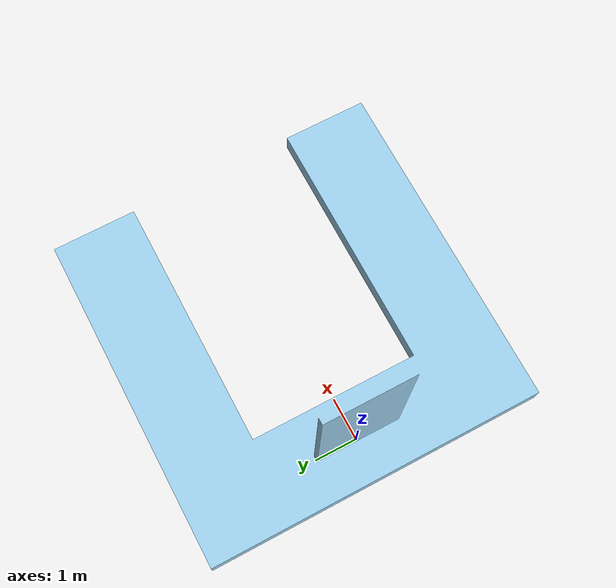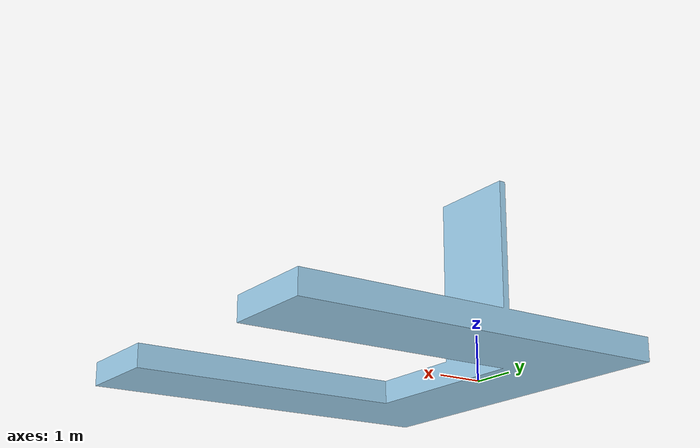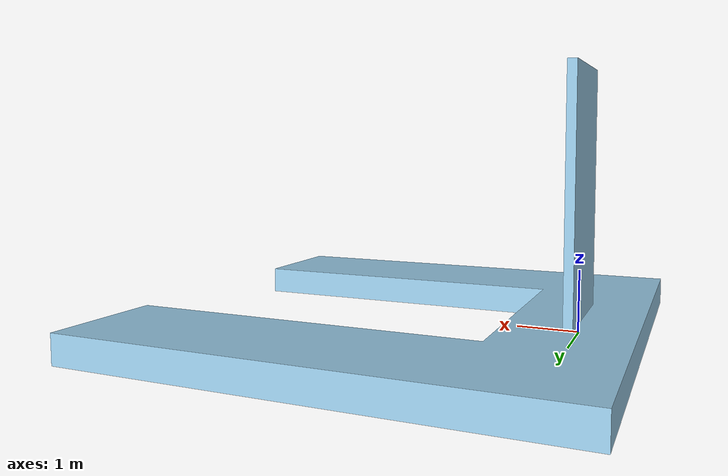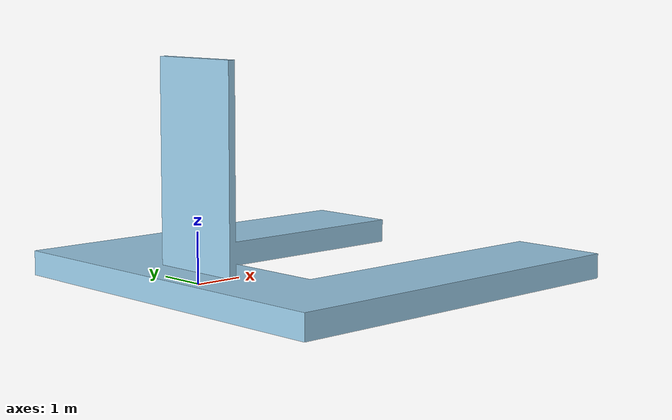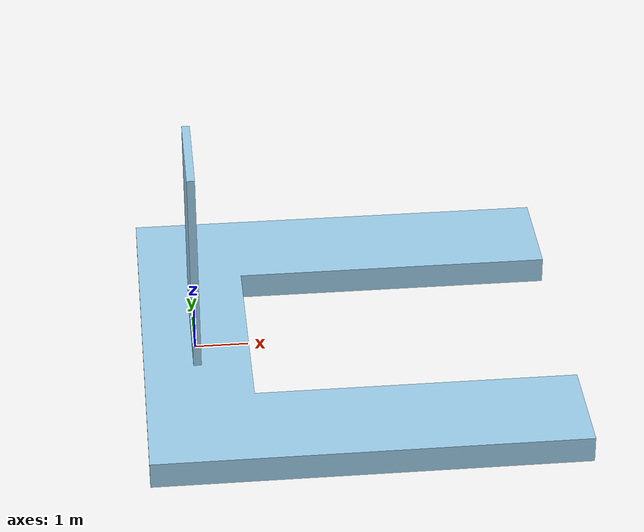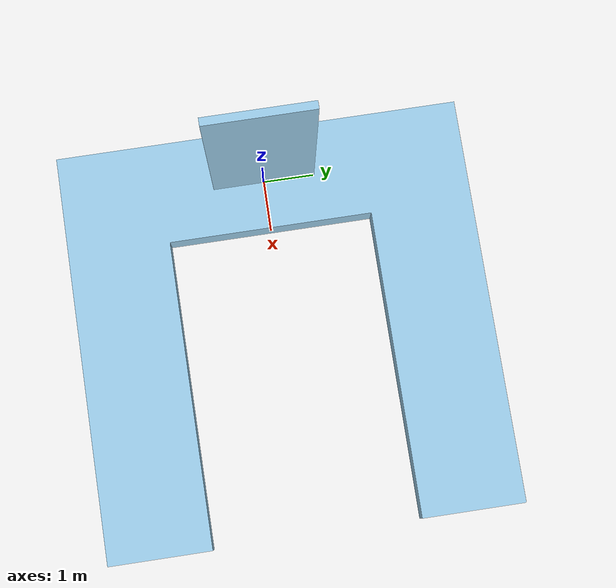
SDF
<?xml version="1.0" ?>
<sdf version="1.6">

  <model name="robotx_dock_u">
    <static>true</static>
    <link name="base_footprint">
      <collision name="collision">
        <pose>0 0 0 0 0 3.14159</pose>
        <geometry>
          <mesh><uri>model://robotx_dock_u/meshes/dockU.dae</uri></mesh>
        </geometry>
      </collision>

      <visual name="visual">
        <cast_shadows>true</cast_shadows>
        <pose>0 0 0 0 0 3.14159</pose>
        <geometry>
          <mesh><uri>model://robotx_dock_u/meshes/dockU.dae</uri></mesh>
        </geometry>
      </visual>
    </link>

    <plugin name="BuoyancyPlugin" filename="libbuoyancy_gazebo_plugin.so">
      <fluid_density>1000</fluid_density>
      <fluid_level>0.0</fluid_level>
      <fluid_drag>5.0</fluid_drag>
      <link>
        <name>base_footprint</name>
        <center_of_volume>0 0 0.5</center_of_volume>
        <area>0.63</area>
        <height>0.70</height>
      </link>
    </plugin>
  </model>
</sdf>
